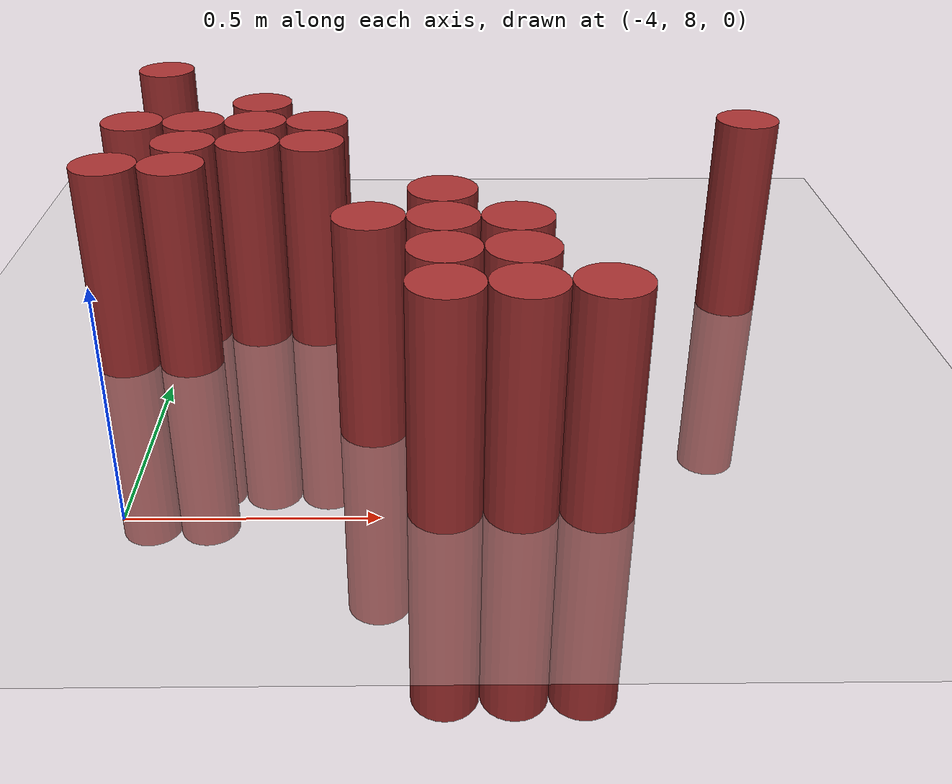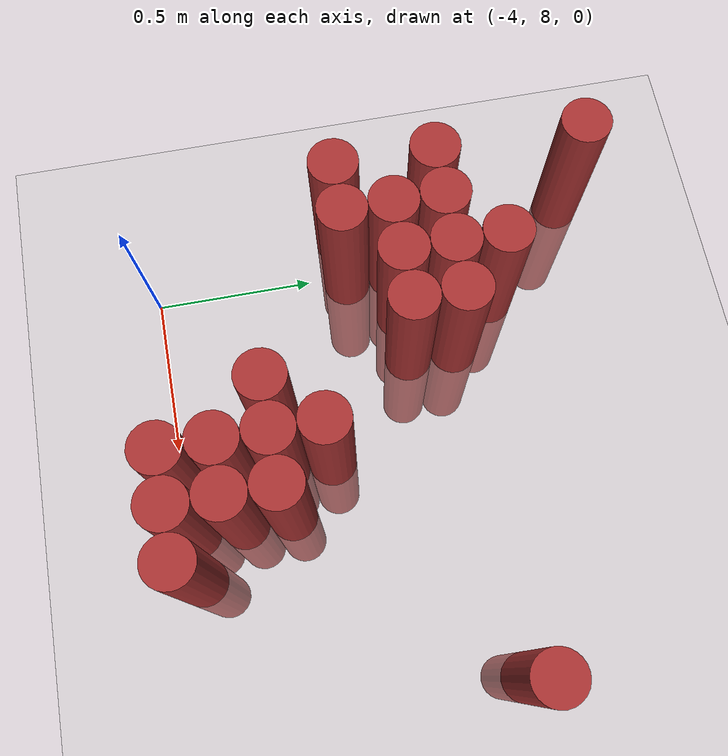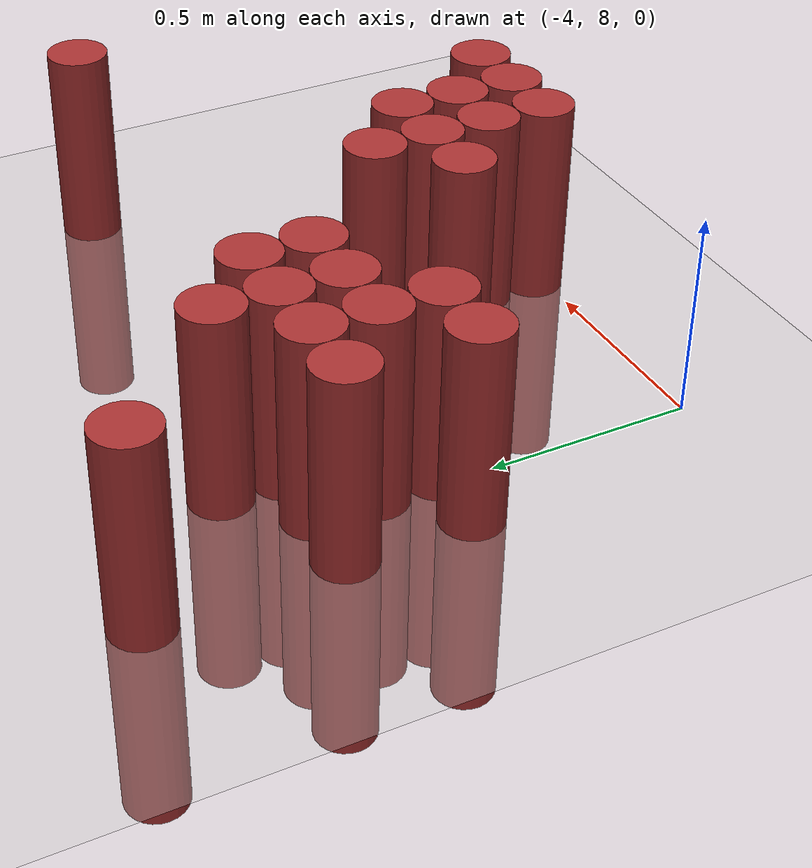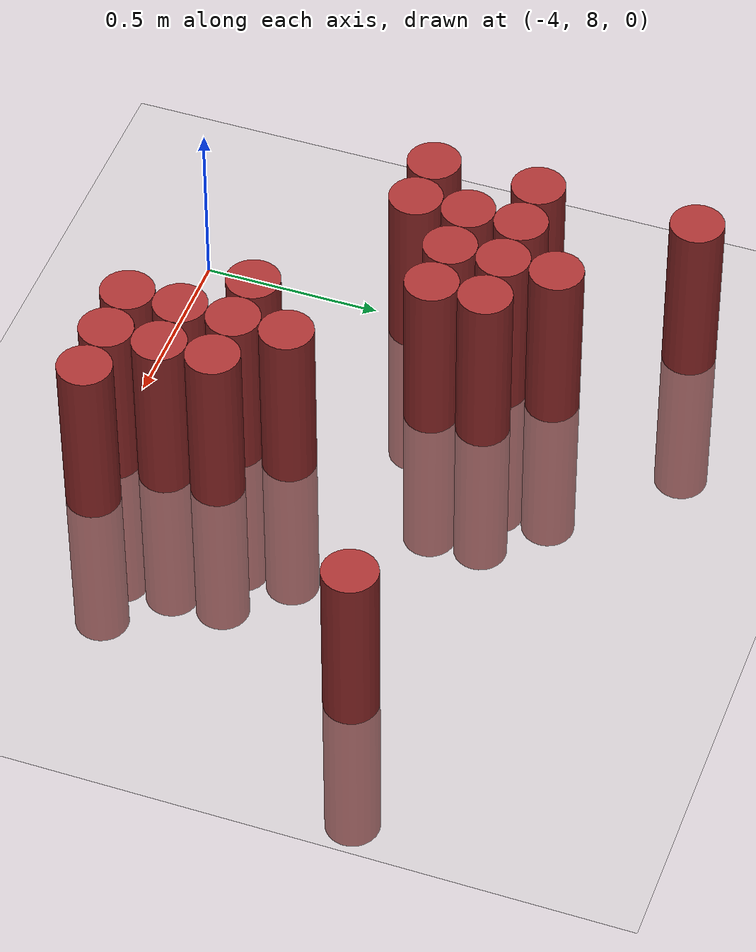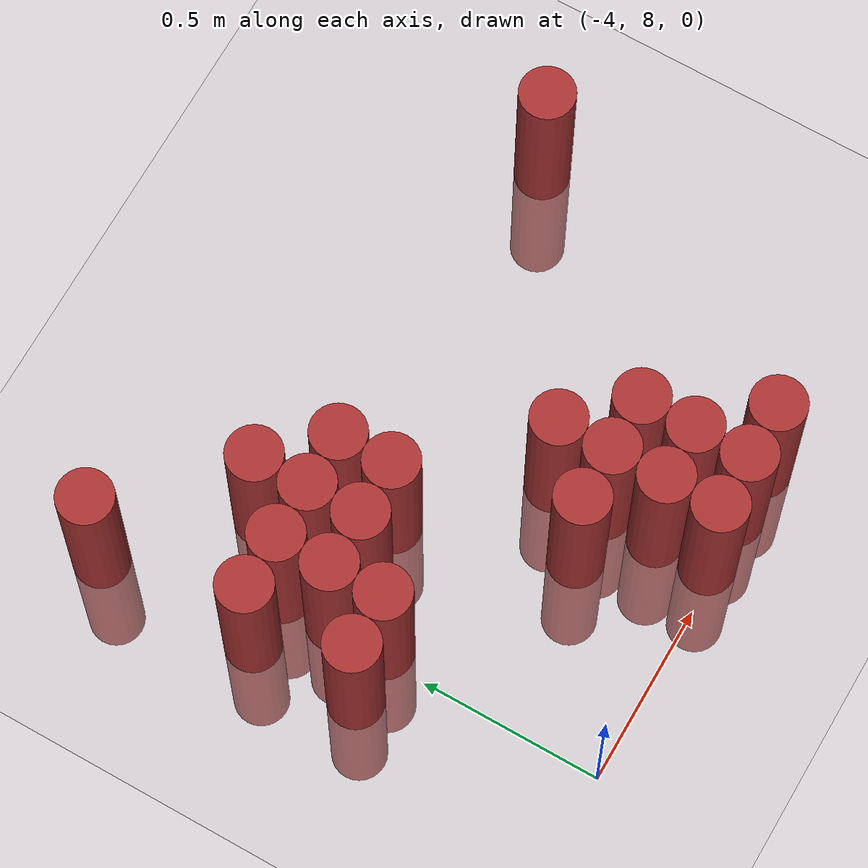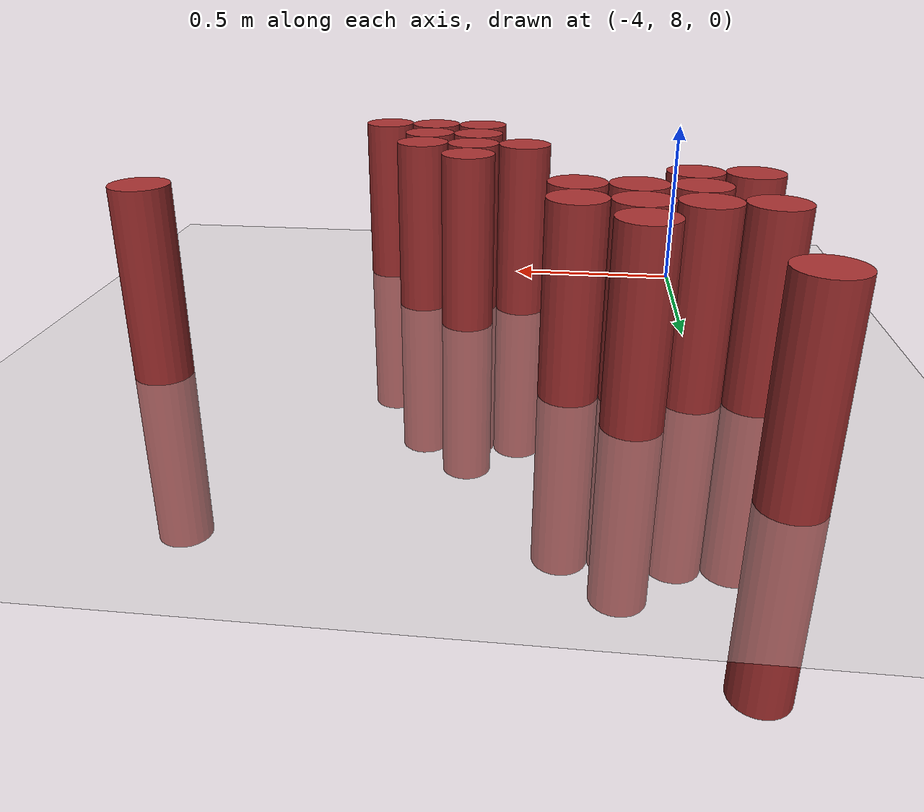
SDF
<sdf version="1.6">
 <world name="default">
  <model name="ground_plane">
   <static>1</static>
   <link name="link">
    <collision name="collision">
     <geometry><plane><normal>0 0 1</normal><size>100 100</size></plane></geometry>
     <surface><friction><ode><mu>100</mu><mu2>50</mu2></ode></friction></surface>
    </collision>
    <visual name="visual">
     <cast_shadows>0</cast_shadows>
     <geometry><plane><normal>0 0 1</normal><size>100 100</size></plane></geometry>
     <material>
      <script><uri>file://media/materials/scripts/gazebo.material</uri><name>Gazebo/Grey</name></script>
     </material>
    </visual>
   </link>
  </model>
  <model name="unit_cylinder_151">
   <static>1</static>
   <pose>-4.125000 8.625000 0.000000 0.000000 0.000000 0.000000</pose>
   <link name="link">
    <inertial>
     <mass>1</mass>
     <inertia><ixx>0.145833</ixx><ixy>0</ixy><ixz>0</ixz><iyy>0.145833</iyy><iyz>0</iyz><izz>0.125</izz></inertia>
    </inertial>
    <collision name="collision">
     <geometry><cylinder><radius>0.075000</radius><length>1</length></cylinder></geometry>
    </collision>
    <visual name="visual">
     <geometry><cylinder><radius>0.075000</radius><length>1</length></cylinder></geometry>
     <material>
      <ambient>0.648000 0.192000 0.192000 1</ambient>
      <diffuse>0.648000 0.192000 0.192000 1</diffuse>
     </material>
     <material>
      <script><name>Gazebo/Grey</name><uri>file://media/materials/scripts/gazebo.material</uri></script>
     </material>
    </visual>
    <sensor name="sensor_contact" type="contact"><contact><collision>collision</collision></contact></sensor>
   </link>
   <plugin filename="gz-sim-touchplugin-system" name="gz::sim::systems::TouchPlugin">
    <target>robot</target>
    <namespace>robot</namespace>
    <time>0.001</time>
    <enabled>true</enabled>
   </plugin>
  </model>
  <model name="unit_cylinder_152">
   <static>1</static>
   <pose>-4.125000 8.925000 0.000000 0.000000 0.000000 0.000000</pose>
   <link name="link">
    <inertial>
     <mass>1</mass>
     <inertia><ixx>0.145833</ixx><ixy>0</ixy><ixz>0</ixz><iyy>0.145833</iyy><iyz>0</iyz><izz>0.125</izz></inertia>
    </inertial>
    <collision name="collision">
     <geometry><cylinder><radius>0.075000</radius><length>1</length></cylinder></geometry>
    </collision>
    <visual name="visual">
     <geometry><cylinder><radius>0.075000</radius><length>1</length></cylinder></geometry>
     <material>
      <ambient>0.648000 0.192000 0.192000 1</ambient>
      <diffuse>0.648000 0.192000 0.192000 1</diffuse>
     </material>
     <material>
      <script><name>Gazebo/Grey</name><uri>file://media/materials/scripts/gazebo.material</uri></script>
     </material>
    </visual>
    <sensor name="sensor_contact" type="contact"><contact><collision>collision</collision></contact></sensor>
   </link>
   <plugin filename="gz-sim-touchplugin-system" name="gz::sim::systems::TouchPlugin">
    <target>robot</target>
    <namespace>robot</namespace>
    <time>0.001</time>
    <enabled>true</enabled>
   </plugin>
  </model>
  <model name="unit_cylinder_153">
   <static>1</static>
   <pose>-4.125000 9.375000 0.000000 0.000000 0.000000 0.000000</pose>
   <link name="link">
    <inertial>
     <mass>1</mass>
     <inertia><ixx>0.145833</ixx><ixy>0</ixy><ixz>0</ixz><iyy>0.145833</iyy><iyz>0</iyz><izz>0.125</izz></inertia>
    </inertial>
    <collision name="collision">
     <geometry><cylinder><radius>0.075000</radius><length>1</length></cylinder></geometry>
    </collision>
    <visual name="visual">
     <geometry><cylinder><radius>0.075000</radius><length>1</length></cylinder></geometry>
     <material>
      <ambient>0.648000 0.192000 0.192000 1</ambient>
      <diffuse>0.648000 0.192000 0.192000 1</diffuse>
     </material>
     <material>
      <script><name>Gazebo/Grey</name><uri>file://media/materials/scripts/gazebo.material</uri></script>
     </material>
    </visual>
    <sensor name="sensor_contact" type="contact"><contact><collision>collision</collision></contact></sensor>
   </link>
   <plugin filename="gz-sim-touchplugin-system" name="gz::sim::systems::TouchPlugin">
    <target>robot</target>
    <namespace>robot</namespace>
    <time>0.001</time>
    <enabled>true</enabled>
   </plugin>
  </model>
  <model name="unit_cylinder_158">
   <static>1</static>
   <pose>-3.975000 8.625000 0.000000 0.000000 0.000000 0.000000</pose>
   <link name="link">
    <inertial>
     <mass>1</mass>
     <inertia><ixx>0.145833</ixx><ixy>0</ixy><ixz>0</ixz><iyy>0.145833</iyy><iyz>0</iyz><izz>0.125</izz></inertia>
    </inertial>
    <collision name="collision">
     <geometry><cylinder><radius>0.075000</radius><length>1</length></cylinder></geometry>
    </collision>
    <visual name="visual">
     <geometry><cylinder><radius>0.075000</radius><length>1</length></cylinder></geometry>
     <material>
      <ambient>0.648000 0.192000 0.192000 1</ambient>
      <diffuse>0.648000 0.192000 0.192000 1</diffuse>
     </material>
     <material>
      <script><name>Gazebo/Grey</name><uri>file://media/materials/scripts/gazebo.material</uri></script>
     </material>
    </visual>
    <sensor name="sensor_contact" type="contact"><contact><collision>collision</collision></contact></sensor>
   </link>
   <plugin filename="gz-sim-touchplugin-system" name="gz::sim::systems::TouchPlugin">
    <target>robot</target>
    <namespace>robot</namespace>
    <time>0.001</time>
    <enabled>true</enabled>
   </plugin>
  </model>
  <model name="unit_cylinder_159">
   <static>1</static>
   <pose>-3.975000 8.775000 0.000000 0.000000 0.000000 0.000000</pose>
   <link name="link">
    <inertial>
     <mass>1</mass>
     <inertia><ixx>0.145833</ixx><ixy>0</ixy><ixz>0</ixz><iyy>0.145833</iyy><iyz>0</iyz><izz>0.125</izz></inertia>
    </inertial>
    <collision name="collision">
     <geometry><cylinder><radius>0.075000</radius><length>1</length></cylinder></geometry>
    </collision>
    <visual name="visual">
     <geometry><cylinder><radius>0.075000</radius><length>1</length></cylinder></geometry>
     <material>
      <ambient>0.648000 0.192000 0.192000 1</ambient>
      <diffuse>0.648000 0.192000 0.192000 1</diffuse>
     </material>
     <material>
      <script><name>Gazebo/Grey</name><uri>file://media/materials/scripts/gazebo.material</uri></script>
     </material>
    </visual>
    <sensor name="sensor_contact" type="contact"><contact><collision>collision</collision></contact></sensor>
   </link>
   <plugin filename="gz-sim-touchplugin-system" name="gz::sim::systems::TouchPlugin">
    <target>robot</target>
    <namespace>robot</namespace>
    <time>0.001</time>
    <enabled>true</enabled>
   </plugin>
  </model>
  <model name="unit_cylinder_160">
   <static>1</static>
   <pose>-3.975000 8.925000 0.000000 0.000000 0.000000 0.000000</pose>
   <link name="link">
    <inertial>
     <mass>1</mass>
     <inertia><ixx>0.145833</ixx><ixy>0</ixy><ixz>0</ixz><iyy>0.145833</iyy><iyz>0</iyz><izz>0.125</izz></inertia>
    </inertial>
    <collision name="collision">
     <geometry><cylinder><radius>0.075000</radius><length>1</length></cylinder></geometry>
    </collision>
    <visual name="visual">
     <geometry><cylinder><radius>0.075000</radius><length>1</length></cylinder></geometry>
     <material>
      <ambient>0.648000 0.192000 0.192000 1</ambient>
      <diffuse>0.648000 0.192000 0.192000 1</diffuse>
     </material>
     <material>
      <script><name>Gazebo/Grey</name><uri>file://media/materials/scripts/gazebo.material</uri></script>
     </material>
    </visual>
    <sensor name="sensor_contact" type="contact"><contact><collision>collision</collision></contact></sensor>
   </link>
   <plugin filename="gz-sim-touchplugin-system" name="gz::sim::systems::TouchPlugin">
    <target>robot</target>
    <namespace>robot</namespace>
    <time>0.001</time>
    <enabled>true</enabled>
   </plugin>
  </model>
  <model name="unit_cylinder_164">
   <static>1</static>
   <pose>-3.825000 8.775000 0.000000 0.000000 0.000000 0.000000</pose>
   <link name="link">
    <inertial>
     <mass>1</mass>
     <inertia><ixx>0.145833</ixx><ixy>0</ixy><ixz>0</ixz><iyy>0.145833</iyy><iyz>0</iyz><izz>0.125</izz></inertia>
    </inertial>
    <collision name="collision">
     <geometry><cylinder><radius>0.075000</radius><length>1</length></cylinder></geometry>
    </collision>
    <visual name="visual">
     <geometry><cylinder><radius>0.075000</radius><length>1</length></cylinder></geometry>
     <material>
      <ambient>0.648000 0.192000 0.192000 1</ambient>
      <diffuse>0.648000 0.192000 0.192000 1</diffuse>
     </material>
     <material>
      <script><name>Gazebo/Grey</name><uri>file://media/materials/scripts/gazebo.material</uri></script>
     </material>
    </visual>
    <sensor name="sensor_contact" type="contact"><contact><collision>collision</collision></contact></sensor>
   </link>
   <plugin filename="gz-sim-touchplugin-system" name="gz::sim::systems::TouchPlugin">
    <target>robot</target>
    <namespace>robot</namespace>
    <time>0.001</time>
    <enabled>true</enabled>
   </plugin>
  </model>
  <model name="unit_cylinder_165">
   <static>1</static>
   <pose>-3.825000 8.925000 0.000000 0.000000 0.000000 0.000000</pose>
   <link name="link">
    <inertial>
     <mass>1</mass>
     <inertia><ixx>0.145833</ixx><ixy>0</ixy><ixz>0</ixz><iyy>0.145833</iyy><iyz>0</iyz><izz>0.125</izz></inertia>
    </inertial>
    <collision name="collision">
     <geometry><cylinder><radius>0.075000</radius><length>1</length></cylinder></geometry>
    </collision>
    <visual name="visual">
     <geometry><cylinder><radius>0.075000</radius><length>1</length></cylinder></geometry>
     <material>
      <ambient>0.648000 0.192000 0.192000 1</ambient>
      <diffuse>0.648000 0.192000 0.192000 1</diffuse>
     </material>
     <material>
      <script><name>Gazebo/Grey</name><uri>file://media/materials/scripts/gazebo.material</uri></script>
     </material>
    </visual>
    <sensor name="sensor_contact" type="contact"><contact><collision>collision</collision></contact></sensor>
   </link>
   <plugin filename="gz-sim-touchplugin-system" name="gz::sim::systems::TouchPlugin">
    <target>robot</target>
    <namespace>robot</namespace>
    <time>0.001</time>
    <enabled>true</enabled>
   </plugin>
  </model>
  <model name="unit_cylinder_166">
   <static>1</static>
   <pose>-3.825000 9.075000 0.000000 0.000000 0.000000 0.000000</pose>
   <link name="link">
    <inertial>
     <mass>1</mass>
     <inertia><ixx>0.145833</ixx><ixy>0</ixy><ixz>0</ixz><iyy>0.145833</iyy><iyz>0</iyz><izz>0.125</izz></inertia>
    </inertial>
    <collision name="collision">
     <geometry><cylinder><radius>0.075000</radius><length>1</length></cylinder></geometry>
    </collision>
    <visual name="visual">
     <geometry><cylinder><radius>0.075000</radius><length>1</length></cylinder></geometry>
     <material>
      <ambient>0.648000 0.192000 0.192000 1</ambient>
      <diffuse>0.648000 0.192000 0.192000 1</diffuse>
     </material>
     <material>
      <script><name>Gazebo/Grey</name><uri>file://media/materials/scripts/gazebo.material</uri></script>
     </material>
    </visual>
    <sensor name="sensor_contact" type="contact"><contact><collision>collision</collision></contact></sensor>
   </link>
   <plugin filename="gz-sim-touchplugin-system" name="gz::sim::systems::TouchPlugin">
    <target>robot</target>
    <namespace>robot</namespace>
    <time>0.001</time>
    <enabled>true</enabled>
   </plugin>
  </model>
  <model name="unit_cylinder_168">
   <static>1</static>
   <pose>-3.675000 8.775000 0.000000 0.000000 0.000000 0.000000</pose>
   <link name="link">
    <inertial>
     <mass>1</mass>
     <inertia><ixx>0.145833</ixx><ixy>0</ixy><ixz>0</ixz><iyy>0.145833</iyy><iyz>0</iyz><izz>0.125</izz></inertia>
    </inertial>
    <collision name="collision">
     <geometry><cylinder><radius>0.075000</radius><length>1</length></cylinder></geometry>
    </collision>
    <visual name="visual">
     <geometry><cylinder><radius>0.075000</radius><length>1</length></cylinder></geometry>
     <material>
      <ambient>0.648000 0.192000 0.192000 1</ambient>
      <diffuse>0.648000 0.192000 0.192000 1</diffuse>
     </material>
     <material>
      <script><name>Gazebo/Grey</name><uri>file://media/materials/scripts/gazebo.material</uri></script>
     </material>
    </visual>
    <sensor name="sensor_contact" type="contact"><contact><collision>collision</collision></contact></sensor>
   </link>
   <plugin filename="gz-sim-touchplugin-system" name="gz::sim::systems::TouchPlugin">
    <target>robot</target>
    <namespace>robot</namespace>
    <time>0.001</time>
    <enabled>true</enabled>
   </plugin>
  </model>
  <model name="unit_cylinder_169">
   <static>1</static>
   <pose>-3.675000 8.925000 0.000000 0.000000 0.000000 0.000000</pose>
   <link name="link">
    <inertial>
     <mass>1</mass>
     <inertia><ixx>0.145833</ixx><ixy>0</ixy><ixz>0</ixz><iyy>0.145833</iyy><iyz>0</iyz><izz>0.125</izz></inertia>
    </inertial>
    <collision name="collision">
     <geometry><cylinder><radius>0.075000</radius><length>1</length></cylinder></geometry>
    </collision>
    <visual name="visual">
     <geometry><cylinder><radius>0.075000</radius><length>1</length></cylinder></geometry>
     <material>
      <ambient>0.648000 0.192000 0.192000 1</ambient>
      <diffuse>0.648000 0.192000 0.192000 1</diffuse>
     </material>
     <material>
      <script><name>Gazebo/Grey</name><uri>file://media/materials/scripts/gazebo.material</uri></script>
     </material>
    </visual>
    <sensor name="sensor_contact" type="contact"><contact><collision>collision</collision></contact></sensor>
   </link>
   <plugin filename="gz-sim-touchplugin-system" name="gz::sim::systems::TouchPlugin">
    <target>robot</target>
    <namespace>robot</namespace>
    <time>0.001</time>
    <enabled>true</enabled>
   </plugin>
  </model>
  <model name="unit_cylinder_170">
   <static>1</static>
   <pose>-3.525000 8.325000 0.000000 0.000000 0.000000 0.000000</pose>
   <link name="link">
    <inertial>
     <mass>1</mass>
     <inertia><ixx>0.145833</ixx><ixy>0</ixy><ixz>0</ixz><iyy>0.145833</iyy><iyz>0</iyz><izz>0.125</izz></inertia>
    </inertial>
    <collision name="collision">
     <geometry><cylinder><radius>0.075000</radius><length>1</length></cylinder></geometry>
    </collision>
    <visual name="visual">
     <geometry><cylinder><radius>0.075000</radius><length>1</length></cylinder></geometry>
     <material>
      <ambient>0.648000 0.192000 0.192000 1</ambient>
      <diffuse>0.648000 0.192000 0.192000 1</diffuse>
     </material>
     <material>
      <script><name>Gazebo/Grey</name><uri>file://media/materials/scripts/gazebo.material</uri></script>
     </material>
    </visual>
    <sensor name="sensor_contact" type="contact"><contact><collision>collision</collision></contact></sensor>
   </link>
   <plugin filename="gz-sim-touchplugin-system" name="gz::sim::systems::TouchPlugin">
    <target>robot</target>
    <namespace>robot</namespace>
    <time>0.001</time>
    <enabled>true</enabled>
   </plugin>
  </model>
  <model name="unit_cylinder_172">
   <static>1</static>
   <pose>-3.375000 8.025000 0.000000 0.000000 0.000000 0.000000</pose>
   <link name="link">
    <inertial>
     <mass>1</mass>
     <inertia><ixx>0.145833</ixx><ixy>0</ixy><ixz>0</ixz><iyy>0.145833</iyy><iyz>0</iyz><izz>0.125</izz></inertia>
    </inertial>
    <collision name="collision">
     <geometry><cylinder><radius>0.075000</radius><length>1</length></cylinder></geometry>
    </collision>
    <visual name="visual">
     <geometry><cylinder><radius>0.075000</radius><length>1</length></cylinder></geometry>
     <material>
      <ambient>0.648000 0.192000 0.192000 1</ambient>
      <diffuse>0.648000 0.192000 0.192000 1</diffuse>
     </material>
     <material>
      <script><name>Gazebo/Grey</name><uri>file://media/materials/scripts/gazebo.material</uri></script>
     </material>
    </visual>
    <sensor name="sensor_contact" type="contact"><contact><collision>collision</collision></contact></sensor>
   </link>
   <plugin filename="gz-sim-touchplugin-system" name="gz::sim::systems::TouchPlugin">
    <target>robot</target>
    <namespace>robot</namespace>
    <time>0.001</time>
    <enabled>true</enabled>
   </plugin>
  </model>
  <model name="unit_cylinder_173">
   <static>1</static>
   <pose>-3.375000 8.175000 0.000000 0.000000 0.000000 0.000000</pose>
   <link name="link">
    <inertial>
     <mass>1</mass>
     <inertia><ixx>0.145833</ixx><ixy>0</ixy><ixz>0</ixz><iyy>0.145833</iyy><iyz>0</iyz><izz>0.125</izz></inertia>
    </inertial>
    <collision name="collision">
     <geometry><cylinder><radius>0.075000</radius><length>1</length></cylinder></geometry>
    </collision>
    <visual name="visual">
     <geometry><cylinder><radius>0.075000</radius><length>1</length></cylinder></geometry>
     <material>
      <ambient>0.648000 0.192000 0.192000 1</ambient>
      <diffuse>0.648000 0.192000 0.192000 1</diffuse>
     </material>
     <material>
      <script><name>Gazebo/Grey</name><uri>file://media/materials/scripts/gazebo.material</uri></script>
     </material>
    </visual>
    <sensor name="sensor_contact" type="contact"><contact><collision>collision</collision></contact></sensor>
   </link>
   <plugin filename="gz-sim-touchplugin-system" name="gz::sim::systems::TouchPlugin">
    <target>robot</target>
    <namespace>robot</namespace>
    <time>0.001</time>
    <enabled>true</enabled>
   </plugin>
  </model>
  <model name="unit_cylinder_174">
   <static>1</static>
   <pose>-3.375000 8.325000 0.000000 0.000000 0.000000 0.000000</pose>
   <link name="link">
    <inertial>
     <mass>1</mass>
     <inertia><ixx>0.145833</ixx><ixy>0</ixy><ixz>0</ixz><iyy>0.145833</iyy><iyz>0</iyz><izz>0.125</izz></inertia>
    </inertial>
    <collision name="collision">
     <geometry><cylinder><radius>0.075000</radius><length>1</length></cylinder></geometry>
    </collision>
    <visual name="visual">
     <geometry><cylinder><radius>0.075000</radius><length>1</length></cylinder></geometry>
     <material>
      <ambient>0.648000 0.192000 0.192000 1</ambient>
      <diffuse>0.648000 0.192000 0.192000 1</diffuse>
     </material>
     <material>
      <script><name>Gazebo/Grey</name><uri>file://media/materials/scripts/gazebo.material</uri></script>
     </material>
    </visual>
    <sensor name="sensor_contact" type="contact"><contact><collision>collision</collision></contact></sensor>
   </link>
   <plugin filename="gz-sim-touchplugin-system" name="gz::sim::systems::TouchPlugin">
    <target>robot</target>
    <namespace>robot</namespace>
    <time>0.001</time>
    <enabled>true</enabled>
   </plugin>
  </model>
  <model name="unit_cylinder_175">
   <static>1</static>
   <pose>-3.375000 8.475000 0.000000 0.000000 0.000000 0.000000</pose>
   <link name="link">
    <inertial>
     <mass>1</mass>
     <inertia><ixx>0.145833</ixx><ixy>0</ixy><ixz>0</ixz><iyy>0.145833</iyy><iyz>0</iyz><izz>0.125</izz></inertia>
    </inertial>
    <collision name="collision">
     <geometry><cylinder><radius>0.075000</radius><length>1</length></cylinder></geometry>
    </collision>
    <visual name="visual">
     <geometry><cylinder><radius>0.075000</radius><length>1</length></cylinder></geometry>
     <material>
      <ambient>0.648000 0.192000 0.192000 1</ambient>
      <diffuse>0.648000 0.192000 0.192000 1</diffuse>
     </material>
     <material>
      <script><name>Gazebo/Grey</name><uri>file://media/materials/scripts/gazebo.material</uri></script>
     </material>
    </visual>
    <sensor name="sensor_contact" type="contact"><contact><collision>collision</collision></contact></sensor>
   </link>
   <plugin filename="gz-sim-touchplugin-system" name="gz::sim::systems::TouchPlugin">
    <target>robot</target>
    <namespace>robot</namespace>
    <time>0.001</time>
    <enabled>true</enabled>
   </plugin>
  </model>
  <model name="unit_cylinder_177">
   <static>1</static>
   <pose>-3.225000 8.025000 0.000000 0.000000 0.000000 0.000000</pose>
   <link name="link">
    <inertial>
     <mass>1</mass>
     <inertia><ixx>0.145833</ixx><ixy>0</ixy><ixz>0</ixz><iyy>0.145833</iyy><iyz>0</iyz><izz>0.125</izz></inertia>
    </inertial>
    <collision name="collision">
     <geometry><cylinder><radius>0.075000</radius><length>1</length></cylinder></geometry>
    </collision>
    <visual name="visual">
     <geometry><cylinder><radius>0.075000</radius><length>1</length></cylinder></geometry>
     <material>
      <ambient>0.648000 0.192000 0.192000 1</ambient>
      <diffuse>0.648000 0.192000 0.192000 1</diffuse>
     </material>
     <material>
      <script><name>Gazebo/Grey</name><uri>file://media/materials/scripts/gazebo.material</uri></script>
     </material>
    </visual>
    <sensor name="sensor_contact" type="contact"><contact><collision>collision</collision></contact></sensor>
   </link>
   <plugin filename="gz-sim-touchplugin-system" name="gz::sim::systems::TouchPlugin">
    <target>robot</target>
    <namespace>robot</namespace>
    <time>0.001</time>
    <enabled>true</enabled>
   </plugin>
  </model>
  <model name="unit_cylinder_178">
   <static>1</static>
   <pose>-3.225000 8.175000 0.000000 0.000000 0.000000 0.000000</pose>
   <link name="link">
    <inertial>
     <mass>1</mass>
     <inertia><ixx>0.145833</ixx><ixy>0</ixy><ixz>0</ixz><iyy>0.145833</iyy><iyz>0</iyz><izz>0.125</izz></inertia>
    </inertial>
    <collision name="collision">
     <geometry><cylinder><radius>0.075000</radius><length>1</length></cylinder></geometry>
    </collision>
    <visual name="visual">
     <geometry><cylinder><radius>0.075000</radius><length>1</length></cylinder></geometry>
     <material>
      <ambient>0.648000 0.192000 0.192000 1</ambient>
      <diffuse>0.648000 0.192000 0.192000 1</diffuse>
     </material>
     <material>
      <script><name>Gazebo/Grey</name><uri>file://media/materials/scripts/gazebo.material</uri></script>
     </material>
    </visual>
    <sensor name="sensor_contact" type="contact"><contact><collision>collision</collision></contact></sensor>
   </link>
   <plugin filename="gz-sim-touchplugin-system" name="gz::sim::systems::TouchPlugin">
    <target>robot</target>
    <namespace>robot</namespace>
    <time>0.001</time>
    <enabled>true</enabled>
   </plugin>
  </model>
  <model name="unit_cylinder_179">
   <static>1</static>
   <pose>-3.225000 8.325000 0.000000 0.000000 0.000000 0.000000</pose>
   <link name="link">
    <inertial>
     <mass>1</mass>
     <inertia><ixx>0.145833</ixx><ixy>0</ixy><ixz>0</ixz><iyy>0.145833</iyy><iyz>0</iyz><izz>0.125</izz></inertia>
    </inertial>
    <collision name="collision">
     <geometry><cylinder><radius>0.075000</radius><length>1</length></cylinder></geometry>
    </collision>
    <visual name="visual">
     <geometry><cylinder><radius>0.075000</radius><length>1</length></cylinder></geometry>
     <material>
      <ambient>0.648000 0.192000 0.192000 1</ambient>
      <diffuse>0.648000 0.192000 0.192000 1</diffuse>
     </material>
     <material>
      <script><name>Gazebo/Grey</name><uri>file://media/materials/scripts/gazebo.material</uri></script>
     </material>
    </visual>
    <sensor name="sensor_contact" type="contact"><contact><collision>collision</collision></contact></sensor>
   </link>
   <plugin filename="gz-sim-touchplugin-system" name="gz::sim::systems::TouchPlugin">
    <target>robot</target>
    <namespace>robot</namespace>
    <time>0.001</time>
    <enabled>true</enabled>
   </plugin>
  </model>
  <model name="unit_cylinder_181">
   <static>1</static>
   <pose>-3.075000 8.025000 0.000000 0.000000 0.000000 0.000000</pose>
   <link name="link">
    <inertial>
     <mass>1</mass>
     <inertia><ixx>0.145833</ixx><ixy>0</ixy><ixz>0</ixz><iyy>0.145833</iyy><iyz>0</iyz><izz>0.125</izz></inertia>
    </inertial>
    <collision name="collision">
     <geometry><cylinder><radius>0.075000</radius><length>1</length></cylinder></geometry>
    </collision>
    <visual name="visual">
     <geometry><cylinder><radius>0.075000</radius><length>1</length></cylinder></geometry>
     <material>
      <ambient>0.648000 0.192000 0.192000 1</ambient>
      <diffuse>0.648000 0.192000 0.192000 1</diffuse>
     </material>
     <material>
      <script><name>Gazebo/Grey</name><uri>file://media/materials/scripts/gazebo.material</uri></script>
     </material>
    </visual>
    <sensor name="sensor_contact" type="contact"><contact><collision>collision</collision></contact></sensor>
   </link>
   <plugin filename="gz-sim-touchplugin-system" name="gz::sim::systems::TouchPlugin">
    <target>robot</target>
    <namespace>robot</namespace>
    <time>0.001</time>
    <enabled>true</enabled>
   </plugin>
  </model>
  <model name="unit_cylinder_190">
   <static>1</static>
   <pose>-2.625000 8.925000 0.000000 0.000000 0.000000 0.000000</pose>
   <link name="link">
    <inertial>
     <mass>1</mass>
     <inertia><ixx>0.145833</ixx><ixy>0</ixy><ixz>0</ixz><iyy>0.145833</iyy><iyz>0</iyz><izz>0.125</izz></inertia>
    </inertial>
    <collision name="collision">
     <geometry><cylinder><radius>0.075000</radius><length>1</length></cylinder></geometry>
    </collision>
    <visual name="visual">
     <geometry><cylinder><radius>0.075000</radius><length>1</length></cylinder></geometry>
     <material>
      <ambient>0.648000 0.192000 0.192000 1</ambient>
      <diffuse>0.648000 0.192000 0.192000 1</diffuse>
     </material>
     <material>
      <script><name>Gazebo/Grey</name><uri>file://media/materials/scripts/gazebo.material</uri></script>
     </material>
    </visual>
    <sensor name="sensor_contact" type="contact"><contact><collision>collision</collision></contact></sensor>
   </link>
   <plugin filename="gz-sim-touchplugin-system" name="gz::sim::systems::TouchPlugin">
    <target>robot</target>
    <namespace>robot</namespace>
    <time>0.001</time>
    <enabled>true</enabled>
   </plugin>
  </model>
 </world>
</sdf>
